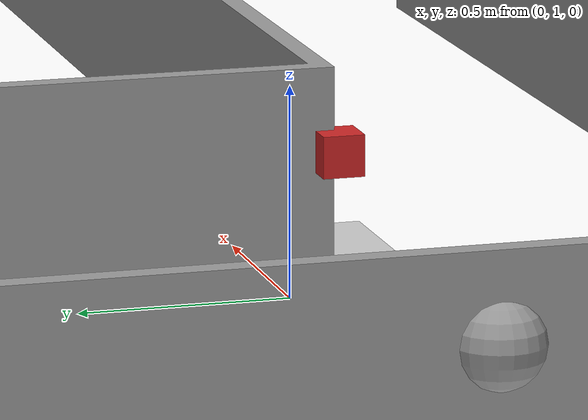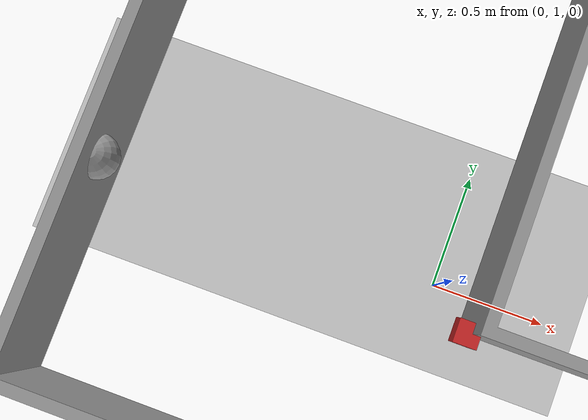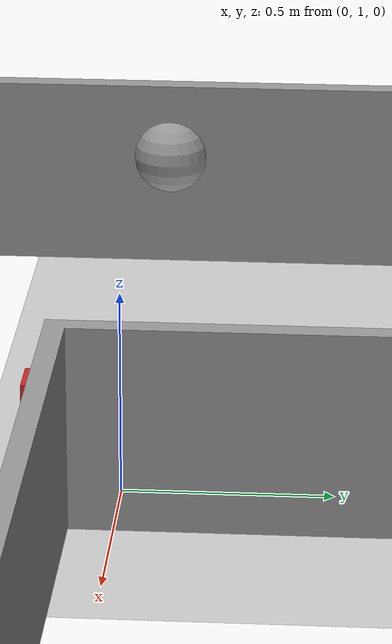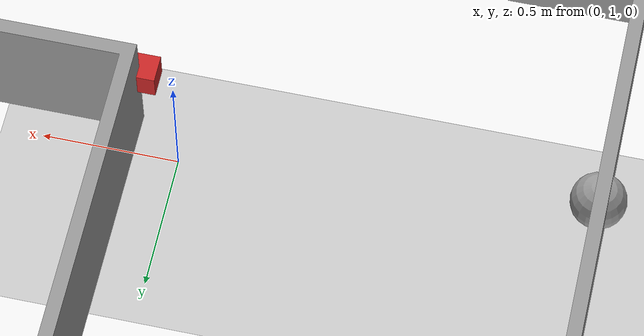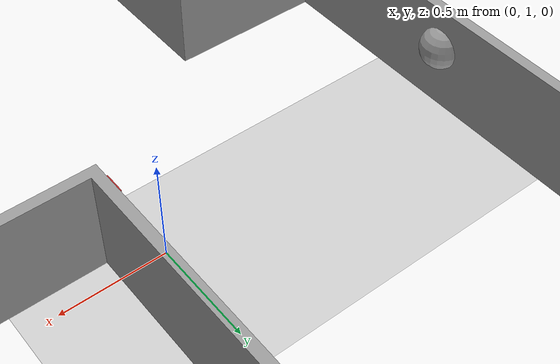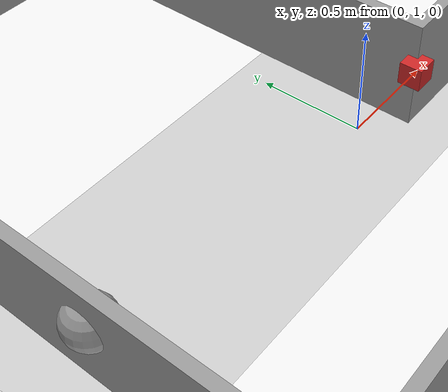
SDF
<sdf version='1.4'>
  <world name='default'>
    <!-- A global light source -->
    <include>
      <uri>model://sun</uri>
    </include>

    <!-- A ground plane -->
    <include>
      <uri>model://ground_plane</uri>
    </include>

    <physics type="ode">
      <real_time_update_rate>1000.0</real_time_update_rate>
      <max_step_size>0.001</max_step_size>
      <real_time_factor>1</real_time_factor>
      <ode>
        <solver>
          <type>quick</type>
          <iters>150</iters>
          <precon_iters>0</precon_iters>
          <sor>1.400000</sor>
          <use_dynamic_moi_rescaling>1</use_dynamic_moi_rescaling>
        </solver>
        <constraints>
          <cfm>0.00001</cfm>
          <erp>0.2</erp>
          <contact_max_correcting_vel>2000.000000</contact_max_correcting_vel>
          <contact_surface_layer>0.01000</contact_surface_layer>
        </constraints>
      </ode>
    </physics>

    <!-- Load world -->
    <include>
      <uri>/home/mtp/catkin_ws/src/eva_a/models/vg12_sim</uri>
    </include>

    <scene>
      <ambient>0.4 0.4 0.4 1</ambient>
      <background>0.7 0.7 0.7 1</background>
      <shadows>true</shadows>
    </scene>

    <gui fullscreen='0'>
      <camera name='user_camera'>
        <pose>0.8 0.0 12.0 0 1.5708 0</pose>
        <view_controller>orbit</view_controller>
      </camera>
    </gui>
  </world>
</sdf>

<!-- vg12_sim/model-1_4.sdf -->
<sdf version='1.4'>
  <model name='vg12'>
    <static>1</static>

    <link name='room'>
      <collision name='body'>
        <pose>0 0 0 0 0 -1.5708</pose>
        <geometry>
          <mesh>
            <uri>/home/mtp/catkin_ws/src/eva_a/models/vg12/meshes/vg12.dae</uri>
            <scale>1.0 1.0 1.0</scale>
          </mesh>
        </geometry>
        <max_contacts>10</max_contacts>
        <surface>
          <bounce/>
          <friction>
            <ode/>
          </friction>
          <contact>
            <ode/>
          </contact>
        </surface>
      </collision>
      <visual name='body'>
        <pose>0 0 0 0 0 -1.5708</pose>
        <geometry>
          <mesh>
            <uri>/home/mtp/catkin_ws/src/eva_a/models/vg12/meshes/vg12.dae</uri>
            <scale>1.0 1.0 1.0</scale>
          </mesh>
        </geometry>
        <material>
          <script>
            <uri>file://media/materials/scripts/gazebo.material</uri>
            <name>Gazebo/Grey</name>
          </script>
        </material>
      </visual>
    </link>

    <link name='gas_cloud'>
      <visual name='visual'>
      <pose>-1.5 1.0 0.3 0 0 0</pose>
        <geometry>
          <sphere>
            <radius>0.1</radius>
          </sphere>
        </geometry>
        <material>
          <script>
            <name>Gazebo/Grey</name>
            <uri>file://media/materials/scripts/gazebo.material</uri>
          </script>
          <ambient>0.0 0.0 0.0 1</ambient>
	  <diffuse>0.0 0.0 0.0 1</diffuse>
	  <specular>0.0 0.0 0.0 1</specular>
	  <emissive>0.1 0.1 1.0 1</emissive>
        </material>
        <transparency>0.0</transparency>
      </visual>
      <self_collide>0</self_collide>
      <kinematic>0</kinematic>
      <gravity>1</gravity>
    </link>

    <link name='gas_sensor'>
      <visual name='visual'>
      <pose>0.15 0.84 0.3 0 0 0</pose>
        <geometry>
          <box>
            <size>0.1 0.1 0.1</size>
          </box>
        </geometry>
        <material>
          <script>
            <name>Gazebo/Red</name>
            <uri>file://media/materials/scripts/gazebo.material</uri>
          </script>
        </material>
      </visual>
      <self_collide>0</self_collide>
      <kinematic>0</kinematic>
      <gravity>1</gravity>
    </link>

  </model>
</sdf>
